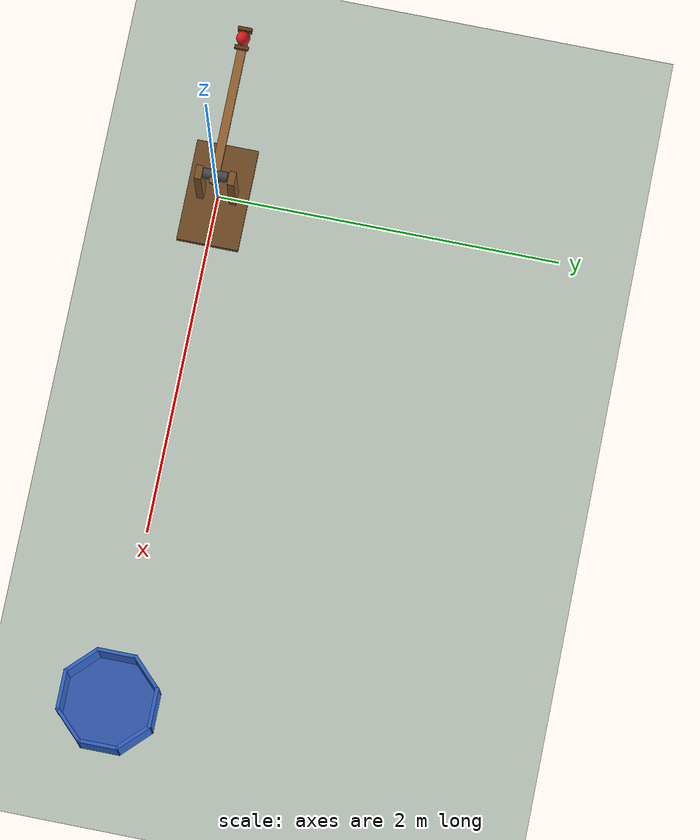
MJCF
<mujoco model="catapult_bucket">
  <compiler angle="degree"/>
  <option timestep="0.002" integrator="implicitfast" gravity="0 0 -9.81"/>

  <visual>
    <global offwidth="1280" offheight="720"/>
  </visual>

  <worldbody>
    <light name="sun" pos="1.5 -2 5" dir="0 0.3 -1" diffuse="0.9 0.9 0.9"/>
    <geom name="floor" type="plane" pos="1.5 0 0" size="10 10 0.1" rgba="0.75 0.8 0.75 1"/>

    <!-- Catapult frame (static) -->
    <geom name="catapult_base" type="box" pos="0 0 0.02" size="0.3 0.18 0.02" rgba="0.45 0.3 0.15 1"/>
    <geom name="catapult_post_left" type="box" pos="0 0.095 0.27" size="0.04 0.02 0.23" rgba="0.5 0.33 0.17 1"/>
    <geom name="catapult_post_right" type="box" pos="0 -0.095 0.27" size="0.04 0.02 0.23" rgba="0.5 0.33 0.17 1"/>

    <!-- Throwing arm: at q=0 it points backward (-x), horizontal; positive q lifts the cup -->
    <body name="catapult_arm" pos="0 0 0.5">
      <joint name="arm_hinge" type="hinge" axis="0 1 0" range="-5 45" armature="0.001"/>
      <geom name="catapult_hub" type="cylinder" fromto="0 -0.07 0 0 0.07 0" size="0.03" mass="0.1" rgba="0.3 0.3 0.3 1"/>
      <geom name="catapult_beam" type="box" pos="-0.4 0 0" size="0.45 0.025 0.02" mass="0.4" rgba="0.6 0.4 0.2 1"/>
      <geom name="catapult_cup_outer" type="box" pos="-0.851 0 0.05" size="0.01 0.04 0.03" mass="0.02" rgba="0.4 0.25 0.1 1"/>
      <geom name="catapult_cup_inner" type="box" pos="-0.749 0 0.035" size="0.01 0.04 0.015" mass="0.02" rgba="0.4 0.25 0.1 1"/>
    </body>

    <!-- Ball, resting in the cup -->
    <body name="ball" pos="-0.8 0 0.56">
      <freejoint name="ball_free"/>
      <geom name="ball" type="sphere" size="0.04" mass="0.1" rgba="0.85 0.1 0.1 1"/>
    </body>

    <!-- Bucket: octagonal wall, inner apothem 0.25 m, rim at 0.3 m, centred 3 m from the catapult pivot -->
    <body name="bucket" pos="3 0 0">
      <geom name="bucket_bottom" type="cylinder" pos="0 0 0.01" size="0.27 0.01" rgba="0.2 0.35 0.7 1"/>
      <geom name="bucket_wall_0" type="box" pos="0.26 0 0.15" euler="0 0 0" size="0.01 0.115 0.15" rgba="0.2 0.4 0.8 1"/>
      <geom name="bucket_wall_1" type="box" pos="0.1838 0.1838 0.15" euler="0 0 45" size="0.01 0.115 0.15" rgba="0.2 0.4 0.8 1"/>
      <geom name="bucket_wall_2" type="box" pos="0 0.26 0.15" euler="0 0 90" size="0.01 0.115 0.15" rgba="0.2 0.4 0.8 1"/>
      <geom name="bucket_wall_3" type="box" pos="-0.1838 0.1838 0.15" euler="0 0 135" size="0.01 0.115 0.15" rgba="0.2 0.4 0.8 1"/>
      <geom name="bucket_wall_4" type="box" pos="-0.26 0 0.15" euler="0 0 180" size="0.01 0.115 0.15" rgba="0.2 0.4 0.8 1"/>
      <geom name="bucket_wall_5" type="box" pos="-0.1838 -0.1838 0.15" euler="0 0 225" size="0.01 0.115 0.15" rgba="0.2 0.4 0.8 1"/>
      <geom name="bucket_wall_6" type="box" pos="0 -0.26 0.15" euler="0 0 270" size="0.01 0.115 0.15" rgba="0.2 0.4 0.8 1"/>
      <geom name="bucket_wall_7" type="box" pos="0.1838 -0.1838 0.15" euler="0 0 315" size="0.01 0.115 0.15" rgba="0.2 0.4 0.8 1"/>
    </body>
  </worldbody>

  <actuator>
    <velocity name="catapult_motor" joint="arm_hinge" kv="100" ctrlrange="0 10" forcerange="-30 30"/>
  </actuator>

  <keyframe>
    <key name="start" qpos="0  -0.8 0 0.56 1 0 0 0" qvel="0  0 0 0 0 0 0" ctrl="6.57"/>
  </keyframe>
</mujoco>
